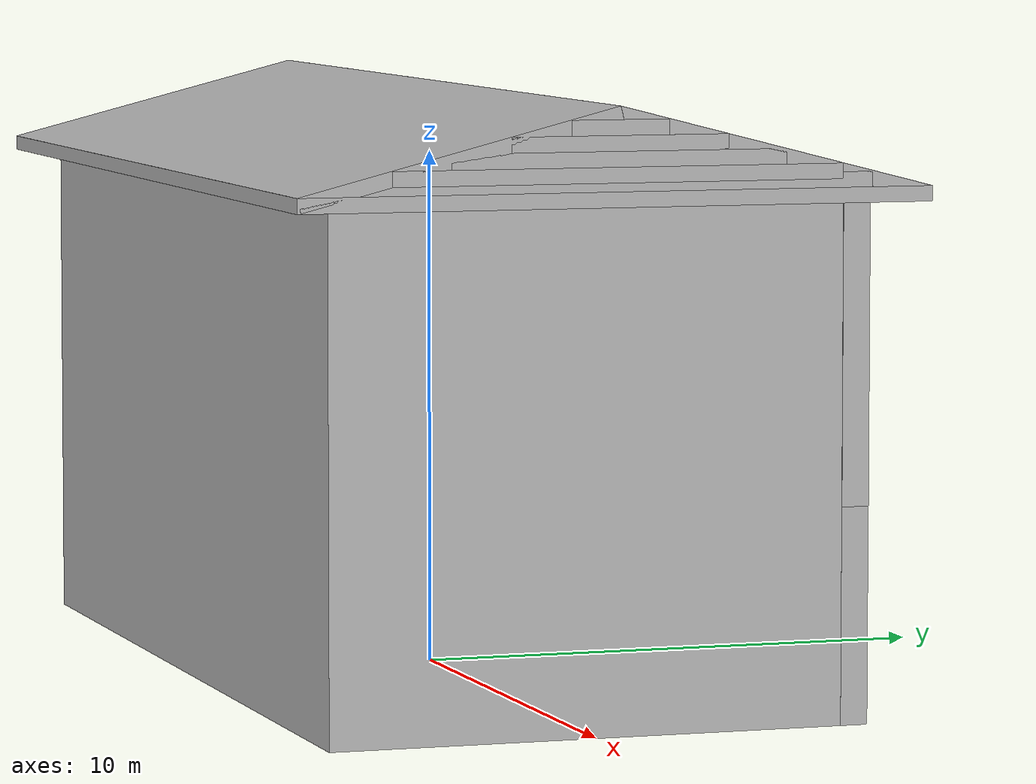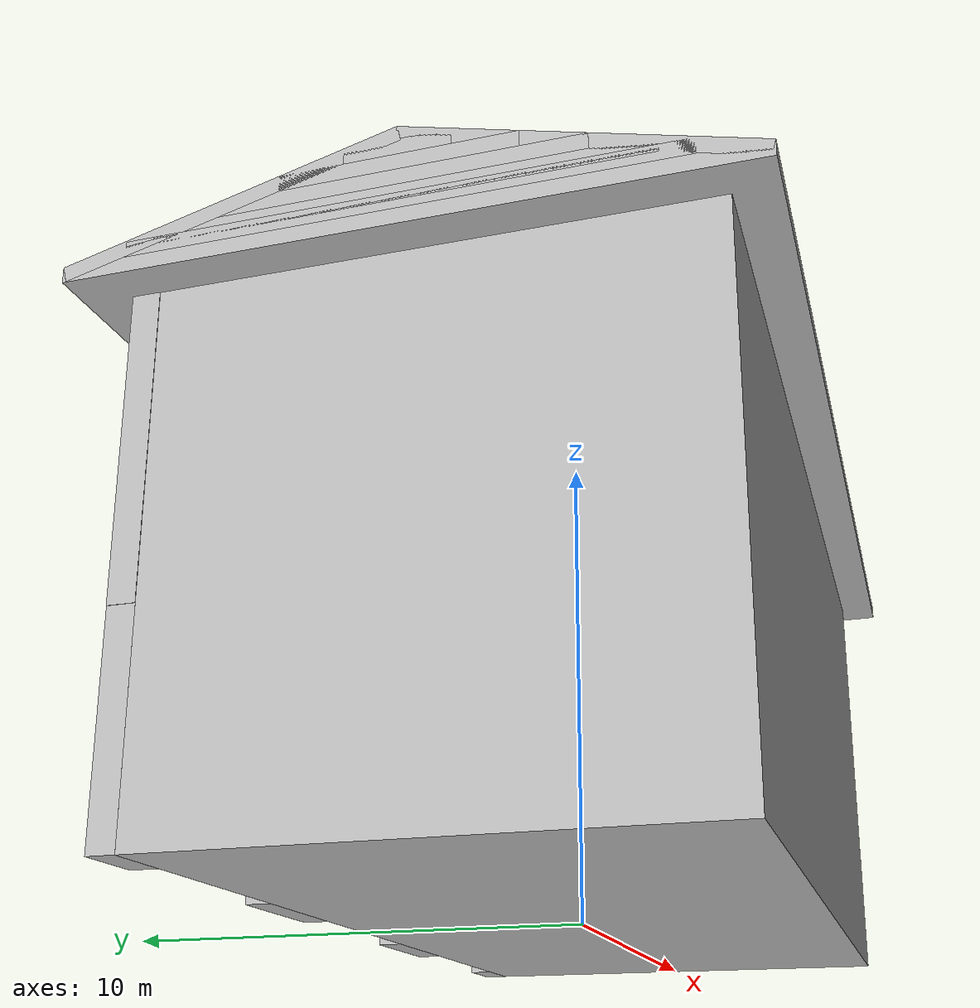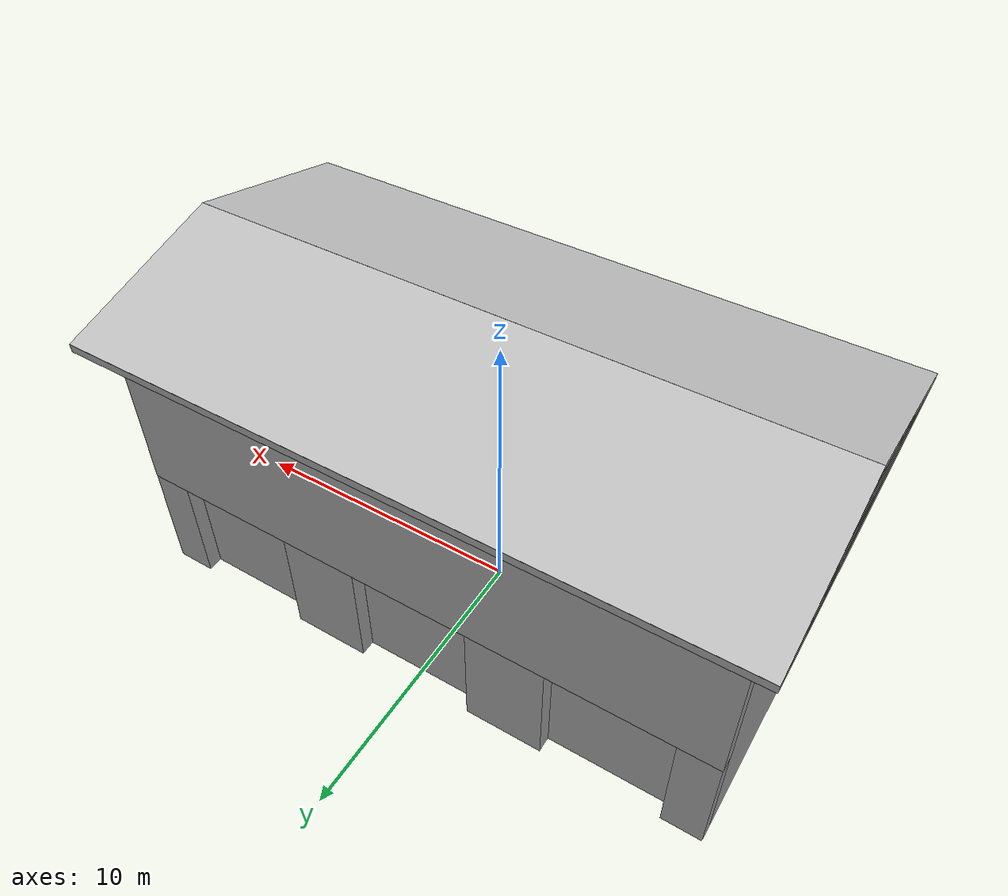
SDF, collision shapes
<?xml version="1.0" ?>
<sdf version="1.6">
    <model name="fire_station">
        <static>true</static>
        <link name="link">
            <collision name="main">
                <pose>0 -0.135 5 0 0 0</pose>
                <geometry>
                    <box>
                        <size>19.98 9.68 10</size>
                    </box>
                </geometry>
            </collision>
            <collision name="front_top">
                <pose>0 4.957 7.0 0 0 0</pose>
                <geometry>
                    <box>
                        <size>20 0.515 6.0</size>
                    </box>
                </geometry>
            </collision>
            <collision name="column_0">
                <pose>9.333 4.957 2.0 0 0 0</pose>
                <geometry>
                    <box>
                        <size>1.315 0.515 4.0</size>
                    </box>
                </geometry>
            </collision>
            <collision name="column_1">
                <pose>3.33 4.957 2.0 0 0 0</pose>
                <geometry>
                    <box>
                        <size>2.63 0.515 4.0</size>
                    </box>
                </geometry>
            </collision>
            <collision name="column_2">
                <pose>-3.33 4.957 2.0 0 0 0</pose>
                <geometry>
                    <box>
                        <size>2.63 0.515 4.0</size>
                    </box>
                </geometry>
            </collision>
            <collision name="column_3">
                <pose>-9.333 4.957 2.0 0 0 0</pose>
                <geometry>
                    <box>
                        <size>1.315 0.515 4.0</size>
                    </box>
                </geometry>
            </collision>
            <collision name="roof_back">
                <pose>0 -2.742 10.467 0.25 0 0</pose>
                <geometry>
                    <box>
                        <size>21.47 6.12 0.28</size>
                    </box>
                </geometry>
            </collision>
            <collision name="roof_front">
                <pose>0 3.12 10.467 -0.25 0 0</pose>
                <geometry>
                    <box>
                        <size>21.47 6.12 0.28</size>
                    </box>
                </geometry>
            </collision>
            <collision name="roof_base">
                <pose>0 0.188 9.705 0 0 0</pose>
                <geometry>
                    <box>
                        <size>21.47 11.86 0.28</size>
                    </box>
                </geometry>
            </collision>
            <collision name="roof_filling_0">
                <pose>0 0.188 9.985 0 0 0</pose>
                <geometry>
                    <box>
                        <size>21.47 9.53 0.28</size>
                    </box>
                </geometry>
            </collision>
            <collision name="roof_filling_1">
                <pose>0 0.188 10.14 0 0 0</pose>
                <geometry>
                    <box>
                        <size>21.47 8.41 0.28</size>
                    </box>
                </geometry>
            </collision>
            <collision name="roof_filling_2">
                <pose>0 0.188 10.42 0 0 0</pose>
                <geometry>
                    <box>
                        <size>21.47 6.25 0.28</size>
                    </box>
                </geometry>
            </collision>
            <collision name="roof_filling_3">
                <pose>0 0.188 10.7 0 0 0</pose>
                <geometry>
                    <box>
                        <size>21.47 4.05 0.28</size>
                    </box>
                </geometry>
            </collision>
            <collision name="roof_filling_4">
                <pose>0 0.188 10.98 0 0 0</pose>
                <geometry>
                    <box>
                        <size>21.47 1.83 0.28</size>
                    </box>
                </geometry>
            </collision>
            <visual name="visual">
                <geometry>
                    <mesh>
                        <uri>https://fuel.gazebosim.org/1.0/openrobotics/models/fire station/3/files/meshes/fire_station.dae</uri>
                    </mesh>
                </geometry>
            </visual>
        </link>
    </model>
</sdf>
